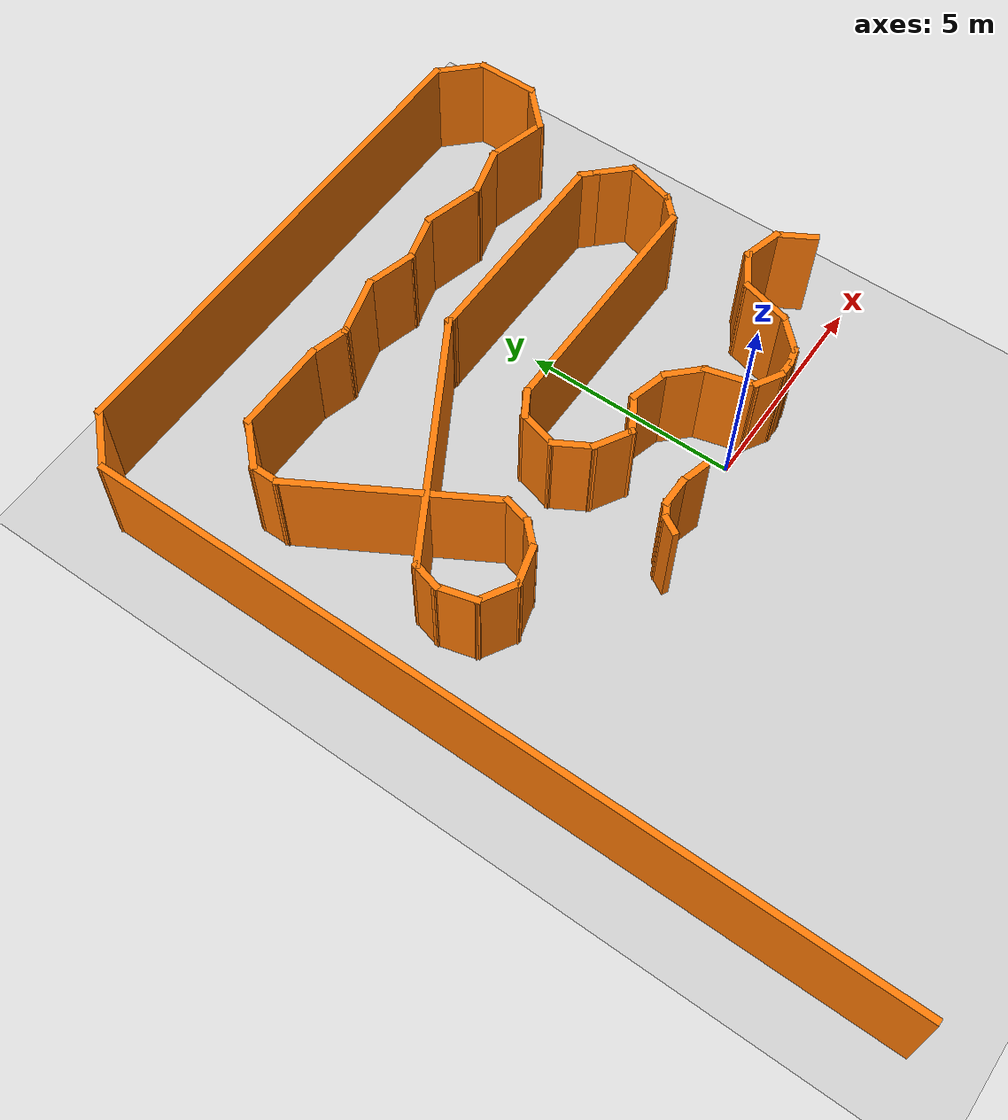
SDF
<sdf version="1.6">
 <world name="default">
  <model name="ground_plane">
   <static>1</static>
   <link name="link">
    <collision name="collision">
     <geometry><plane><normal>0 0 1</normal><size>100 100</size></plane></geometry>
     <surface>
      <contact><collide_bitmask>65535</collide_bitmask></contact>
      <friction><ode><mu>100</mu><mu2>50</mu2></ode></friction>
     </surface>
    </collision>
    <visual name="visual">
     <cast_shadows>0</cast_shadows>
     <geometry><plane><normal>0 0 1</normal><size>100 100</size></plane></geometry>
     <material>
      <script><uri>file://media/materials/scripts/gazebo.material</uri><name>Gazebo/Grey</name></script>
     </material>
    </visual>
   </link>
  </model>
  <model name="trace1">
   <pose>-1.95414 0.34627 0 0 -0 0</pose>
   <link name="Wall_100">
    <collision name="Wall_100_Collision">
     <geometry><box><size>1.5 0.15 2.5</size></box></geometry>
     <pose>0 0 1.25 0 -0 0</pose>
    </collision>
    <visual name="Wall_100_Visual">
     <pose>0 0 1.25 0 -0 0</pose>
     <geometry><box><size>1.5 0.15 2.5</size></box></geometry>
     <material>
      <script><uri>file://media/materials/scripts/gazebo.material</uri><name>Gazebo/Grey</name></script>
      <ambient>0.996078 0.47451 0.0196078 1</ambient>
     </material>
     <meta><layer>0</layer></meta>
    </visual>
    <pose>5.23082 7.50666 0 0 -0 -0.261799</pose>
   </link>
   <link name="Wall_101">
    <collision name="Wall_101_Collision">
     <geometry><box><size>1.25 0.15 2.5</size></box></geometry>
     <pose>0 0 1.25 0 -0 0</pose>
    </collision>
    <visual name="Wall_101_Visual">
     <pose>0 0 1.25 0 -0 0</pose>
     <geometry><box><size>1.25 0.15 2.5</size></box></geometry>
     <material>
      <script><uri>file://media/materials/scripts/gazebo.material</uri><name>Gazebo/Grey</name></script>
      <ambient>0.996078 0.47451 0.0196078 1</ambient>
     </material>
     <meta><layer>0</layer></meta>
    </visual>
    <pose>6.27172 7.72087 0 0 -0 0.785398</pose>
   </link>
   <link name="Wall_102">
    <collision name="Wall_102_Collision">
     <geometry><box><size>1.5 0.15 2.5</size></box></geometry>
     <pose>0 0 1.25 0 -0 0</pose>
    </collision>
    <visual name="Wall_102_Visual">
     <pose>0 0 1.25 0 -0 0</pose>
     <geometry><box><size>1.5 0.15 2.5</size></box></geometry>
     <material>
      <script><uri>file://media/materials/scripts/gazebo.material</uri><name>Gazebo/Grey</name></script>
      <ambient>0.996078 0.47451 0.0196078 1</ambient>
     </material>
     <meta><layer>0</layer></meta>
    </visual>
    <pose>6.66063 8.78478 0 0 -0 1.5708</pose>
   </link>
   <link name="Wall_103">
    <collision name="Wall_103_Collision">
     <geometry><box><size>1.25 0.15 2.5</size></box></geometry>
     <pose>0 0 1.25 0 -0 0</pose>
    </collision>
    <visual name="Wall_103_Visual">
     <pose>0 0 1.25 0 -0 0</pose>
     <geometry><box><size>1.25 0.15 2.5</size></box></geometry>
     <material>
      <script><uri>file://media/materials/scripts/gazebo.material</uri><name>Gazebo/Grey</name></script>
      <ambient>0.996078 0.47451 0.0196078 1</ambient>
     </material>
     <meta><layer>0</layer></meta>
    </visual>
    <pose>6.27172 9.84869 0 0 -0 2.35619</pose>
   </link>
   <link name="Wall_104">
    <collision name="Wall_104_Collision">
     <geometry><box><size>11.75 0.15 2.5</size></box></geometry>
     <pose>0 0 1.25 0 -0 0</pose>
    </collision>
    <visual name="Wall_104_Visual">
     <pose>0 0 1.25 0 -0 0</pose>
     <geometry><box><size>11.75 0.15 2.5</size></box></geometry>
     <material>
      <script><uri>file://media/materials/scripts/gazebo.material</uri><name>Gazebo/Grey</name></script>
      <ambient>0.996078 0.47451 0.0196078 1</ambient>
     </material>
     <meta><layer>0</layer></meta>
    </visual>
    <pose>0.082816 10.2376 0 0 -0 3.14159</pose>
   </link>
   <link name="Wall_105">
    <collision name="Wall_105_Collision">
     <geometry><box><size>1.5 0.15 2.5</size></box></geometry>
     <pose>0 0 1.25 0 -0 0</pose>
    </collision>
    <visual name="Wall_105_Visual">
     <pose>0 0 1.25 0 -0 0</pose>
     <geometry><box><size>1.5 0.15 2.5</size></box></geometry>
     <material>
      <script><uri>file://media/materials/scripts/gazebo.material</uri><name>Gazebo/Grey</name></script>
      <ambient>0.996078 0.47451 0.0196078 1</ambient>
     </material>
     <meta><layer>0</layer></meta>
    </visual>
    <pose>-6.19448 9.7603 0 0 -0 -2.35619</pose>
   </link>
   <link name="Wall_108">
    <collision name="Wall_108_Collision">
     <geometry><box><size>18.75 0.15 2.5</size></box></geometry>
     <pose>0 0 1.25 0 -0 0</pose>
    </collision>
    <visual name="Wall_108_Visual">
     <pose>0 0 1.25 0 -0 0</pose>
     <geometry><box><size>18.75 0.15 2.5</size></box></geometry>
     <material>
      <script><uri>file://media/materials/scripts/gazebo.material</uri><name>Gazebo/Grey</name></script>
      <ambient>0.996078 0.47451 0.0196078 1</ambient>
     </material>
     <meta><layer>0</layer></meta>
    </visual>
    <pose>-6.67178 -0.016998 0 0 -0 -1.5708</pose>
   </link>
   <link name="Wall_31">
    <collision name="Wall_31_Collision">
     <geometry><box><size>0.5 0.15 2.5</size></box></geometry>
     <pose>0 0 1.25 0 -0 0</pose>
    </collision>
    <visual name="Wall_31_Visual">
     <pose>0 0 1.25 0 -0 0</pose>
     <geometry><box><size>0.5 0.15 2.5</size></box></geometry>
     <material>
      <script><uri>file://media/materials/scripts/gazebo.material</uri><name>Gazebo/Grey</name></script>
      <ambient>0.996078 0.47451 0.0196078 1</ambient>
     </material>
     <meta><layer>0</layer></meta>
    </visual>
    <pose>-1.23231 -0.649383 0 0 -0 1.0472</pose>
   </link>
   <link name="Wall_32">
    <collision name="Wall_32_Collision">
     <geometry><box><size>0.5 0.15 2.5</size></box></geometry>
     <pose>0 0 1.25 0 -0 0</pose>
    </collision>
    <visual name="Wall_32_Visual">
     <pose>0 0 1.25 0 -0 0</pose>
     <geometry><box><size>0.5 0.15 2.5</size></box></geometry>
     <material>
      <script><uri>file://media/materials/scripts/gazebo.material</uri><name>Gazebo/Grey</name></script>
      <ambient>0.996078 0.47451 0.0196078 1</ambient>
     </material>
     <meta><layer>0</layer></meta>
    </visual>
    <pose>-0.993257 -0.410329 0 0 -0 0.523599</pose>
   </link>
   <link name="Wall_33">
    <collision name="Wall_33_Collision">
     <geometry><box><size>0.75 0.15 2.5</size></box></geometry>
     <pose>0 0 1.25 0 -0 0</pose>
    </collision>
    <visual name="Wall_33_Visual">
     <pose>0 0 1.25 0 -0 0</pose>
     <geometry><box><size>0.75 0.15 2.5</size></box></geometry>
     <material>
      <script><uri>file://media/materials/scripts/gazebo.material</uri><name>Gazebo/Grey</name></script>
      <ambient>0.996078 0.47451 0.0196078 1</ambient>
     </material>
     <meta><layer>0</layer></meta>
    </visual>
    <pose>-0.541702 -0.322829 0 0 -0 0</pose>
   </link>
   <link name="Wall_34">
    <collision name="Wall_34_Collision">
     <geometry><box><size>0.75 0.15 2.5</size></box></geometry>
     <pose>0 0 1.25 0 -0 0</pose>
    </collision>
    <visual name="Wall_34_Visual">
     <pose>0 0 1.25 0 -0 0</pose>
     <geometry><box><size>0.75 0.15 2.5</size></box></geometry>
     <material>
      <script><uri>file://media/materials/scripts/gazebo.material</uri><name>Gazebo/Grey</name></script>
      <ambient>0.996078 0.47451 0.0196078 1</ambient>
     </material>
     <meta><layer>0</layer></meta>
    </visual>
    <pose>0.048076 -0.400474 0 0 -0 -0.261799</pose>
   </link>
   <link name="Wall_58">
    <collision name="Wall_58_Collision">
     <geometry><box><size>1 0.15 2.5</size></box></geometry>
     <pose>0 0 1.25 0 -0 0</pose>
    </collision>
    <visual name="Wall_58_Visual">
     <pose>0 0 1.25 0 -0 0</pose>
     <geometry><box><size>1 0.15 2.5</size></box></geometry>
     <material>
      <script><uri>file://media/materials/scripts/gazebo.material</uri><name>Gazebo/Grey</name></script>
      <ambient>0.996078 0.47451 0.0196078 1</ambient>
     </material>
     <meta><layer>0</layer></meta>
    </visual>
    <pose>6.46289 0.971087 0 0 -0 2.0944</pose>
   </link>
   <link name="Wall_59">
    <collision name="Wall_59_Collision">
     <geometry><box><size>1 0.15 2.5</size></box></geometry>
     <pose>0 0 1.25 0 -0 0</pose>
    </collision>
    <visual name="Wall_59_Visual">
     <pose>0 0 1.25 0 -0 0</pose>
     <geometry><box><size>1 0.15 2.5</size></box></geometry>
     <material>
      <script><uri>file://media/materials/scripts/gazebo.material</uri><name>Gazebo/Grey</name></script>
      <ambient>0.996078 0.47451 0.0196078 1</ambient>
     </material>
     <meta><layer>0</layer></meta>
    </visual>
    <pose>5.83987 1.44915 0 0 -0 2.87979</pose>
   </link>
   <link name="Wall_60">
    <collision name="Wall_60_Collision">
     <geometry><box><size>1 0.15 2.5</size></box></geometry>
     <pose>0 0 1.25 0 -0 0</pose>
    </collision>
    <visual name="Wall_60_Visual">
     <pose>0 0 1.25 0 -0 0</pose>
     <geometry><box><size>1 0.15 2.5</size></box></geometry>
     <material>
      <script><uri>file://media/materials/scripts/gazebo.material</uri><name>Gazebo/Grey</name></script>
      <ambient>0.996078 0.47451 0.0196078 1</ambient>
     </material>
     <meta><layer>0</layer></meta>
    </visual>
    <pose>5.0613 1.34664 0 0 -0 -2.61799</pose>
   </link>
   <link name="Wall_61">
    <collision name="Wall_61_Collision">
     <geometry><box><size>1.25 0.15 2.5</size></box></geometry>
     <pose>0 0 1.25 0 -0 0</pose>
    </collision>
    <visual name="Wall_61_Visual">
     <pose>0 0 1.25 0 -0 0</pose>
     <geometry><box><size>1.25 0.15 2.5</size></box></geometry>
     <material>
      <script><uri>file://media/materials/scripts/gazebo.material</uri><name>Gazebo/Grey</name></script>
      <ambient>0.996078 0.47451 0.0196078 1</ambient>
     </material>
     <meta><layer>0</layer></meta>
    </visual>
    <pose>4.55088 0.602885 0 0 -0 -1.8326</pose>
   </link>
   <link name="Wall_62">
    <collision name="Wall_62_Collision">
     <geometry><box><size>1 0.15 2.5</size></box></geometry>
     <pose>0 0 1.25 0 -0 0</pose>
    </collision>
    <visual name="Wall_62_Visual">
     <pose>0 0 1.25 0 -0 0</pose>
     <geometry><box><size>1 0.15 2.5</size></box></geometry>
     <material>
      <script><uri>file://media/materials/scripts/gazebo.material</uri><name>Gazebo/Grey</name></script>
      <ambient>0.996078 0.47451 0.0196078 1</ambient>
     </material>
     <meta><layer>0</layer></meta>
    </visual>
    <pose>4.10801 -0.228895 0 0 -0 -2.35619</pose>
   </link>
   <link name="Wall_63">
    <collision name="Wall_63_Collision">
     <geometry><box><size>0.5 0.15 2.5</size></box></geometry>
     <pose>0 0 1.25 0 -0 0</pose>
    </collision>
    <visual name="Wall_63_Visual">
     <pose>0 0 1.25 0 -0 0</pose>
     <geometry><box><size>0.5 0.15 2.5</size></box></geometry>
     <material>
      <script><uri>file://media/materials/scripts/gazebo.material</uri><name>Gazebo/Grey</name></script>
      <ambient>0.996078 0.47451 0.0196078 1</ambient>
     </material>
     <meta><layer>0</layer></meta>
    </visual>
    <pose>3.63845 -0.574709 0 0 -0 -2.87979</pose>
   </link>
   <link name="Wall_64">
    <collision name="Wall_64_Collision">
     <geometry><box><size>0.5 0.15 2.5</size></box></geometry>
     <pose>0 0 1.25 0 -0 0</pose>
    </collision>
    <visual name="Wall_64_Visual">
     <pose>0 0 1.25 0 -0 0</pose>
     <geometry><box><size>0.5 0.15 2.5</size></box></geometry>
     <material>
      <script><uri>file://media/materials/scripts/gazebo.material</uri><name>Gazebo/Grey</name></script>
      <ambient>0.996078 0.47451 0.0196078 1</ambient>
     </material>
     <meta><layer>0</layer></meta>
    </visual>
    <pose>3.29442 -0.620002 0 0 -0 3.14159</pose>
   </link>
   <link name="Wall_65">
    <collision name="Wall_65_Collision">
     <geometry><box><size>0.75 0.15 2.5</size></box></geometry>
     <pose>0 0 1.25 0 -0 0</pose>
    </collision>
    <visual name="Wall_65_Visual">
     <pose>0 0 1.25 0 -0 0</pose>
     <geometry><box><size>0.75 0.15 2.5</size></box></geometry>
     <material>
      <script><uri>file://media/materials/scripts/gazebo.material</uri><name>Gazebo/Grey</name></script>
      <ambient>0.996078 0.47451 0.0196078 1</ambient>
     </material>
     <meta><layer>0</layer></meta>
    </visual>
    <pose>2.85961 -0.470002 0 0 -0 2.61799</pose>
   </link>
   <link name="Wall_66">
    <collision name="Wall_66_Collision">
     <geometry><box><size>1.25 0.15 2.5</size></box></geometry>
     <pose>0 0 1.25 0 -0 0</pose>
    </collision>
    <visual name="Wall_66_Visual">
     <pose>0 0 1.25 0 -0 0</pose>
     <geometry><box><size>1.25 0.15 2.5</size></box></geometry>
     <material>
      <script><uri>file://media/materials/scripts/gazebo.material</uri><name>Gazebo/Grey</name></script>
      <ambient>0.996078 0.47451 0.0196078 1</ambient>
     </material>
     <meta><layer>0</layer></meta>
    </visual>
    <pose>2.45745 0.211257 0 0 -0 1.8326</pose>
   </link>
   <link name="Wall_67">
    <collision name="Wall_67_Collision">
     <geometry><box><size>1 0.15 2.5</size></box></geometry>
     <pose>0 0 1.25 0 -0 0</pose>
    </collision>
    <visual name="Wall_67_Visual">
     <pose>0 0 1.25 0 -0 0</pose>
     <geometry><box><size>1 0.15 2.5</size></box></geometry>
     <material>
      <script><uri>file://media/materials/scripts/gazebo.material</uri><name>Gazebo/Grey</name></script>
      <ambient>0.996078 0.47451 0.0196078 1</ambient>
     </material>
     <meta><layer>0</layer></meta>
    </visual>
    <pose>2.01458 1.04304 0 0 -0 2.35619</pose>
   </link>
   <link name="Wall_68">
    <collision name="Wall_68_Collision">
     <geometry><box><size>1 0.15 2.5</size></box></geometry>
     <pose>0 0 1.25 0 -0 0</pose>
    </collision>
    <visual name="Wall_68_Visual">
     <pose>0 0 1.25 0 -0 0</pose>
     <geometry><box><size>1 0.15 2.5</size></box></geometry>
     <material>
      <script><uri>file://media/materials/scripts/gazebo.material</uri><name>Gazebo/Grey</name></script>
      <ambient>0.996078 0.47451 0.0196078 1</ambient>
     </material>
     <meta><layer>0</layer></meta>
    </visual>
    <pose>1.30354 1.45355 0 0 -0 2.87979</pose>
   </link>
   <link name="Wall_69">
    <collision name="Wall_69_Collision">
     <geometry><box><size>1 0.15 2.5</size></box></geometry>
     <pose>0 0 1.25 0 -0 0</pose>
    </collision>
    <visual name="Wall_69_Visual">
     <pose>0 0 1.25 0 -0 0</pose>
     <geometry><box><size>1 0.15 2.5</size></box></geometry>
     <material>
      <script><uri>file://media/materials/scripts/gazebo.material</uri><name>Gazebo/Grey</name></script>
      <ambient>0.996078 0.47451 0.0196078 1</ambient>
     </material>
     <meta><layer>0</layer></meta>
    </visual>
    <pose>0.524964 1.35105 0 0 -0 -2.61799</pose>
   </link>
   <link name="Wall_70">
    <collision name="Wall_70_Collision">
     <geometry><box><size>1 0.15 2.5</size></box></geometry>
     <pose>0 0 1.25 0 -0 0</pose>
    </collision>
    <visual name="Wall_70_Visual">
     <pose>0 0 1.25 0 -0 0</pose>
     <geometry><box><size>1 0.15 2.5</size></box></geometry>
     <material>
      <script><uri>file://media/materials/scripts/gazebo.material</uri><name>Gazebo/Grey</name></script>
      <ambient>0.996078 0.47451 0.0196078 1</ambient>
     </material>
     <meta><layer>0</layer></meta>
    </visual>
    <pose>-0.211158 1.35105 0 0 -0 2.61799</pose>
   </link>
   <link name="Wall_71">
    <collision name="Wall_71_Collision">
     <geometry><box><size>1 0.15 2.5</size></box></geometry>
     <pose>0 0 1.25 0 -0 0</pose>
    </collision>
    <visual name="Wall_71_Visual">
     <pose>0 0 1.25 0 -0 0</pose>
     <geometry><box><size>1 0.15 2.5</size></box></geometry>
     <material>
      <script><uri>file://media/materials/scripts/gazebo.material</uri><name>Gazebo/Grey</name></script>
      <ambient>0.996078 0.47451 0.0196078 1</ambient>
     </material>
     <meta><layer>0</layer></meta>
    </visual>
    <pose>-0.791719 1.93161 0 0 -0 2.0944</pose>
   </link>
   <link name="Wall_72">
    <collision name="Wall_72_Collision">
     <geometry><box><size>1 0.15 2.5</size></box></geometry>
     <pose>0 0 1.25 0 -0 0</pose>
    </collision>
    <visual name="Wall_72_Visual">
     <pose>0 0 1.25 0 -0 0</pose>
     <geometry><box><size>1 0.15 2.5</size></box></geometry>
     <material>
      <script><uri>file://media/materials/scripts/gazebo.material</uri><name>Gazebo/Grey</name></script>
      <ambient>0.996078 0.47451 0.0196078 1</ambient>
     </material>
     <meta><layer>0</layer></meta>
    </visual>
    <pose>-0.894221 2.71019 0 0 -0 1.309</pose>
   </link>
   <link name="Wall_73">
    <collision name="Wall_73_Collision">
     <geometry><box><size>0.75 0.15 2.5</size></box></geometry>
     <pose>0 0 1.25 0 -0 0</pose>
    </collision>
    <visual name="Wall_73_Visual">
     <pose>0 0 1.25 0 -0 0</pose>
     <geometry><box><size>0.75 0.15 2.5</size></box></geometry>
     <material>
      <script><uri>file://media/materials/scripts/gazebo.material</uri><name>Gazebo/Grey</name></script>
      <ambient>0.996078 0.47451 0.0196078 1</ambient>
     </material>
     <meta><layer>0</layer></meta>
    </visual>
    <pose>-0.524415 3.27071 0 0 -0 0.523599</pose>
   </link>
   <link name="Wall_74">
    <collision name="Wall_74_Collision">
     <geometry><box><size>5.75 0.15 2.5</size></box></geometry>
     <pose>0 0 1.25 0 -0 0</pose>
    </collision>
    <visual name="Wall_74_Visual">
     <pose>0 0 1.25 0 -0 0</pose>
     <geometry><box><size>5.75 0.15 2.5</size></box></geometry>
     <material>
      <script><uri>file://media/materials/scripts/gazebo.material</uri><name>Gazebo/Grey</name></script>
      <ambient>0.996078 0.47451 0.0196078 1</ambient>
     </material>
     <meta><layer>0</layer></meta>
    </visual>
    <pose>2.53539 3.42071 0 0 -0 0</pose>
   </link>
   <link name="Wall_75">
    <collision name="Wall_75_Collision">
     <geometry><box><size>0.75 0.15 2.5</size></box></geometry>
     <pose>0 0 1.25 0 -0 0</pose>
    </collision>
    <visual name="Wall_75_Visual">
     <pose>0 0 1.25 0 -0 0</pose>
     <geometry><box><size>0.75 0.15 2.5</size></box></geometry>
     <material>
      <script><uri>file://media/materials/scripts/gazebo.material</uri><name>Gazebo/Grey</name></script>
      <ambient>0.996078 0.47451 0.0196078 1</ambient>
     </material>
     <meta><layer>0</layer></meta>
    </visual>
    <pose>5.54753 3.63284 0 0 -0 0.785398</pose>
   </link>
   <link name="Wall_76">
    <collision name="Wall_76_Collision">
     <geometry><box><size>1.25 0.15 2.5</size></box></geometry>
     <pose>0 0 1.25 0 -0 0</pose>
    </collision>
    <visual name="Wall_76_Visual">
     <pose>0 0 1.25 0 -0 0</pose>
     <geometry><box><size>1.25 0.15 2.5</size></box></geometry>
     <material>
      <script><uri>file://media/materials/scripts/gazebo.material</uri><name>Gazebo/Grey</name></script>
      <ambient>0.996078 0.47451 0.0196078 1</ambient>
     </material>
     <meta><layer>0</layer></meta>
    </visual>
    <pose>5.90201 4.37624 0 0 -0 1.309</pose>
   </link>
   <link name="Wall_77">
    <collision name="Wall_77_Collision">
     <geometry><box><size>1 0.15 2.5</size></box></geometry>
     <pose>0 0 1.25 0 -0 0</pose>
    </collision>
    <visual name="Wall_77_Visual">
     <pose>0 0 1.25 0 -0 0</pose>
     <geometry><box><size>1 0.15 2.5</size></box></geometry>
     <material>
      <script><uri>file://media/materials/scripts/gazebo.material</uri><name>Gazebo/Grey</name></script>
      <ambient>0.996078 0.47451 0.0196078 1</ambient>
     </material>
     <meta><layer>0</layer></meta>
    </visual>
    <pose>5.74384 5.20801 0 0 -0 2.35619</pose>
   </link>
   <link name="Wall_78">
    <collision name="Wall_78_Collision">
     <geometry><box><size>0.5 0.15 2.5</size></box></geometry>
     <pose>0 0 1.25 0 -0 0</pose>
    </collision>
    <visual name="Wall_78_Visual">
     <pose>0 0 1.25 0 -0 0</pose>
     <geometry><box><size>0.5 0.15 2.5</size></box></geometry>
     <material>
      <script><uri>file://media/materials/scripts/gazebo.material</uri><name>Gazebo/Grey</name></script>
      <ambient>0.996078 0.47451 0.0196078 1</ambient>
     </material>
     <meta><layer>0</layer></meta>
    </visual>
    <pose>5.31957 5.63228 0 0 -0 2.35619</pose>
   </link>
   <link name="Wall_79">
    <collision name="Wall_79_Collision">
     <geometry><box><size>5 0.15 2.5</size></box></geometry>
     <pose>0 0 1.25 0 -0 0</pose>
    </collision>
    <visual name="Wall_79_Visual">
     <pose>0 0 1.25 0 -0 0</pose>
     <geometry><box><size>5 0.15 2.5</size></box></geometry>
     <material>
      <script><uri>file://media/materials/scripts/gazebo.material</uri><name>Gazebo/Grey</name></script>
      <ambient>0.996078 0.47451 0.0196078 1</ambient>
     </material>
     <meta><layer>0</layer></meta>
    </visual>
    <pose>2.77083 5.75602 0 0 -0 3.14159</pose>
   </link>
   <link name="Wall_80">
    <collision name="Wall_80_Collision">
     <geometry><box><size>0.25 0.15 2.5</size></box></geometry>
     <pose>0 0 1.25 0 -0 0</pose>
    </collision>
    <visual name="Wall_80_Visual">
     <pose>0 0 1.25 0 -0 0</pose>
     <geometry><box><size>0.25 0.15 2.5</size></box></geometry>
     <material>
      <script><uri>file://media/materials/scripts/gazebo.material</uri><name>Gazebo/Grey</name></script>
      <ambient>0.996078 0.47451 0.0196078 1</ambient>
     </material>
     <meta><layer>0</layer></meta>
    </visual>
    <pose>0.297533 5.76896 0 0 -0 2.87979</pose>
   </link>
   <link name="Wall_81">
    <collision name="Wall_81_Collision">
     <geometry><box><size>6 0.15 2.5</size></box></geometry>
     <pose>0 0 1.25 0 -0 0</pose>
    </collision>
    <visual name="Wall_81_Visual">
     <pose>0 0 1.25 0 -0 0</pose>
     <geometry><box><size>6 0.15 2.5</size></box></geometry>
     <material>
      <script><uri>file://media/materials/scripts/gazebo.material</uri><name>Gazebo/Grey</name></script>
      <ambient>0.996078 0.47451 0.0196078 1</ambient>
     </material>
     <meta><layer>0</layer></meta>
    </visual>
    <pose>-2.28389 4.3194 0 0 -0 -2.61799</pose>
   </link>
   <link name="Wall_82">
    <collision name="Wall_82_Collision">
     <geometry><box><size>0.75 0.15 2.5</size></box></geometry>
     <pose>0 0 1.25 0 -0 0</pose>
    </collision>
    <visual name="Wall_82_Visual">
     <pose>0 0 1.25 0 -0 0</pose>
     <geometry><box><size>0.75 0.15 2.5</size></box></geometry>
     <material>
      <script><uri>file://media/materials/scripts/gazebo.material</uri><name>Gazebo/Grey</name></script>
      <ambient>0.996078 0.47451 0.0196078 1</ambient>
     </material>
     <meta><layer>0</layer></meta>
    </visual>
    <pose>-4.89466 2.56713 0 0 -0 -1.8326</pose>
   </link>
   <link name="Wall_83">
    <collision name="Wall_83_Collision">
     <geometry><box><size>1 0.15 2.5</size></box></geometry>
     <pose>0 0 1.25 0 -0 0</pose>
    </collision>
    <visual name="Wall_83_Visual">
     <pose>0 0 1.25 0 -0 0</pose>
     <geometry><box><size>1 0.15 2.5</size></box></geometry>
     <material>
      <script><uri>file://media/materials/scripts/gazebo.material</uri><name>Gazebo/Grey</name></script>
      <ambient>0.996078 0.47451 0.0196078 1</ambient>
     </material>
     <meta><layer>0</layer></meta>
    </visual>
    <pose>-4.86231 1.86683 0 0 -0 -1.309</pose>
   </link>
   <link name="Wall_84">
    <collision name="Wall_84_Collision">
     <geometry><box><size>1 0.15 2.5</size></box></geometry>
     <pose>0 0 1.25 0 -0 0</pose>
    </collision>
    <visual name="Wall_84_Visual">
     <pose>0 0 1.25 0 -0 0</pose>
     <geometry><box><size>1 0.15 2.5</size></box></geometry>
     <material>
      <script><uri>file://media/materials/scripts/gazebo.material</uri><name>Gazebo/Grey</name></script>
      <ambient>0.996078 0.47451 0.0196078 1</ambient>
     </material>
     <meta><layer>0</layer></meta>
    </visual>
    <pose>-4.38425 1.24381 0 0 -0 -0.523599</pose>
   </link>
   <link name="Wall_85">
    <collision name="Wall_85_Collision">
     <geometry><box><size>1 0.15 2.5</size></box></geometry>
     <pose>0 0 1.25 0 -0 0</pose>
    </collision>
    <visual name="Wall_85_Visual">
     <pose>0 0 1.25 0 -0 0</pose>
     <geometry><box><size>1 0.15 2.5</size></box></geometry>
     <material>
      <script><uri>file://media/materials/scripts/gazebo.material</uri><name>Gazebo/Grey</name></script>
      <ambient>0.996078 0.47451 0.0196078 1</ambient>
     </material>
     <meta><layer>0</layer></meta>
    </visual>
    <pose>-3.60567 1.14131 0 0 -0 0.261799</pose>
   </link>
   <link name="Wall_86">
    <collision name="Wall_86_Collision">
     <geometry><box><size>0.75 0.15 2.5</size></box></geometry>
     <pose>0 0 1.25 0 -0 0</pose>
    </collision>
    <visual name="Wall_86_Visual">
     <pose>0 0 1.25 0 -0 0</pose>
     <geometry><box><size>0.75 0.15 2.5</size></box></geometry>
     <material>
      <script><uri>file://media/materials/scripts/gazebo.material</uri><name>Gazebo/Grey</name></script>
      <ambient>0.996078 0.47451 0.0196078 1</ambient>
     </material>
     <meta><layer>0</layer></meta>
    </visual>
    <pose>-2.98302 1.46344 0 0 -0 0.785398</pose>
   </link>
   <link name="Wall_87">
    <collision name="Wall_87_Collision">
     <geometry><box><size>0.75 0.15 2.5</size></box></geometry>
     <pose>0 0 1.25 0 -0 0</pose>
    </collision>
    <visual name="Wall_87_Visual">
     <pose>0 0 1.25 0 -0 0</pose>
     <geometry><box><size>0.75 0.15 2.5</size></box></geometry>
     <material>
      <script><uri>file://media/materials/scripts/gazebo.material</uri><name>Gazebo/Grey</name></script>
      <ambient>0.996078 0.47451 0.0196078 1</ambient>
     </material>
     <meta><layer>0</layer></meta>
    </visual>
    <pose>-2.69324 1.96535 0 0 -0 1.309</pose>
   </link>
   <link name="Wall_88">
    <collision name="Wall_88_Collision">
     <geometry><box><size>4.75 0.15 2.5</size></box></geometry>
     <pose>0 0 1.25 0 -0 0</pose>
    </collision>
    <visual name="Wall_88_Visual">
     <pose>0 0 1.25 0 -0 0</pose>
     <geometry><box><size>4.75 0.15 2.5</size></box></geometry>
     <material>
      <script><uri>file://media/materials/scripts/gazebo.material</uri><name>Gazebo/Grey</name></script>
      <ambient>0.996078 0.47451 0.0196078 1</ambient>
     </material>
     <meta><layer>0</layer></meta>
    </visual>
    <pose>-3.76559 4.24699 0 0 -0 2.0944</pose>
   </link>
   <link name="Wall_89">
    <collision name="Wall_89_Collision">
     <geometry><box><size>0.75 0.15 2.5</size></box></geometry>
     <pose>0 0 1.25 0 -0 0</pose>
    </collision>
    <visual name="Wall_89_Visual">
     <pose>0 0 1.25 0 -0 0</pose>
     <geometry><box><size>0.75 0.15 2.5</size></box></geometry>
     <material>
      <script><uri>file://media/materials/scripts/gazebo.material</uri><name>Gazebo/Grey</name></script>
      <ambient>0.996078 0.47451 0.0196078 1</ambient>
     </material>
     <meta><layer>0</layer></meta>
    </visual>
    <pose>-4.91559 6.53885 0 0 -0 1.5708</pose>
   </link>
   <link name="Wall_92">
    <collision name="Wall_92_Collision">
     <geometry><box><size>1.25 0.15 2.5</size></box></geometry>
     <pose>0 0 1.25 0 -0 0</pose>
    </collision>
    <visual name="Wall_92_Visual">
     <pose>0 0 1.25 0 -0 0</pose>
     <geometry><box><size>1.25 0.15 2.5</size></box></geometry>
     <material>
      <script><uri>file://media/materials/scripts/gazebo.material</uri><name>Gazebo/Grey</name></script>
      <ambient>0.996078 0.47451 0.0196078 1</ambient>
     </material>
     <meta><layer>0</layer></meta>
    </visual>
    <pose>-4.52668 7.22775 0 0 -0 0.785398</pose>
   </link>
   <link name="Wall_93">
    <collision name="Wall_93_Collision">
     <geometry><box><size>2.25 0.15 2.5</size></box></geometry>
     <pose>0 0 1.25 0 -0 0</pose>
    </collision>
    <visual name="Wall_93_Visual">
     <pose>0 0 1.25 0 -0 0</pose>
     <geometry><box><size>2.25 0.15 2.5</size></box></geometry>
     <material>
      <script><uri>file://media/materials/scripts/gazebo.material</uri><name>Gazebo/Grey</name></script>
      <ambient>0.996078 0.47451 0.0196078 1</ambient>
     </material>
     <meta><layer>0</layer></meta>
    </visual>
    <pose>-3.08778 7.61666 0 0 -0 0</pose>
   </link>
   <link name="Wall_94">
    <collision name="Wall_94_Collision">
     <geometry><box><size>1 0.15 2.5</size></box></geometry>
     <pose>0 0 1.25 0 -0 0</pose>
    </collision>
    <visual name="Wall_94_Visual">
     <pose>0 0 1.25 0 -0 0</pose>
     <geometry><box><size>1 0.15 2.5</size></box></geometry>
     <material>
      <script><uri>file://media/materials/scripts/gazebo.material</uri><name>Gazebo/Grey</name></script>
      <ambient>0.996078 0.47451 0.0196078 1</ambient>
     </material>
     <meta><layer>0</layer></meta>
    </visual>
    <pose>-1.62726 7.50666 0 0 -0 -0.261799</pose>
   </link>
   <link name="Wall_95">
    <collision name="Wall_95_Collision">
     <geometry><box><size>1.5 0.15 2.5</size></box></geometry>
     <pose>0 0 1.25 0 -0 0</pose>
    </collision>
    <visual name="Wall_95_Visual">
     <pose>0 0 1.25 0 -0 0</pose>
     <geometry><box><size>1.5 0.15 2.5</size></box></geometry>
     <material>
      <script><uri>file://media/materials/scripts/gazebo.material</uri><name>Gazebo/Grey</name></script>
      <ambient>0.996078 0.47451 0.0196078 1</ambient>
     </material>
     <meta><layer>0</layer></meta>
    </visual>
    <pose>-0.564739 7.57137 0 0 -0 0.261799</pose>
   </link>
   <link name="Wall_96">
    <collision name="Wall_96_Collision">
     <geometry><box><size>1.25 0.15 2.5</size></box></geometry>
     <pose>0 0 1.25 0 -0 0</pose>
    </collision>
    <visual name="Wall_96_Visual">
     <pose>0 0 1.25 0 -0 0</pose>
     <geometry><box><size>1.25 0.15 2.5</size></box></geometry>
     <material>
      <script><uri>file://media/materials/scripts/gazebo.material</uri><name>Gazebo/Grey</name></script>
      <ambient>0.996078 0.47451 0.0196078 1</ambient>
     </material>
     <meta><layer>0</layer></meta>
    </visual>
    <pose>0.618521 7.60372 0 0 -0 -0.261799</pose>
   </link>
   <link name="Wall_97">
    <collision name="Wall_97_Collision">
     <geometry><box><size>1.25 0.15 2.5</size></box></geometry>
     <pose>0 0 1.25 0 -0 0</pose>
    </collision>
    <visual name="Wall_97_Visual">
     <pose>0 0 1.25 0 -0 0</pose>
     <geometry><box><size>1.25 0.15 2.5</size></box></geometry>
     <material>
      <script><uri>file://media/materials/scripts/gazebo.material</uri><name>Gazebo/Grey</name></script>
      <ambient>0.996078 0.47451 0.0196078 1</ambient>
     </material>
     <meta><layer>0</layer></meta>
    </visual>
    <pose>1.68104 7.60372 0 0 -0 0.261799</pose>
   </link>
   <link name="Wall_98">
    <collision name="Wall_98_Collision">
     <geometry><box><size>1.5 0.15 2.5</size></box></geometry>
     <pose>0 0 1.25 0 -0 0</pose>
    </collision>
    <visual name="Wall_98_Visual">
     <pose>0 0 1.25 0 -0 0</pose>
     <geometry><box><size>1.5 0.15 2.5</size></box></geometry>
     <material>
      <script><uri>file://media/materials/scripts/gazebo.material</uri><name>Gazebo/Grey</name></script>
      <ambient>0.996078 0.47451 0.0196078 1</ambient>
     </material>
     <meta><layer>0</layer></meta>
    </visual>
    <pose>2.8643 7.57137 0 0 -0 -0.261799</pose>
   </link>
   <link name="Wall_99">
    <collision name="Wall_99_Collision">
     <geometry><box><size>1.25 0.15 2.5</size></box></geometry>
     <pose>0 0 1.25 0 -0 0</pose>
    </collision>
    <visual name="Wall_99_Visual">
     <pose>0 0 1.25 0 -0 0</pose>
     <geometry><box><size>1.25 0.15 2.5</size></box></geometry>
     <material>
      <script><uri>file://media/materials/scripts/gazebo.material</uri><name>Gazebo/Grey</name></script>
      <ambient>0.996078 0.47451 0.0196078 1</ambient>
     </material>
     <meta><layer>0</layer></meta>
    </visual>
    <pose>4.04756 7.53902 0 0 -0 0.261799</pose>
   </link>
   <static>1</static>
  </model>
 </world>
</sdf>
